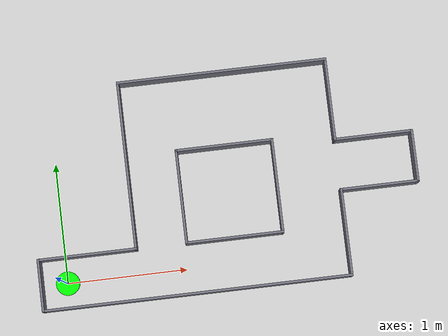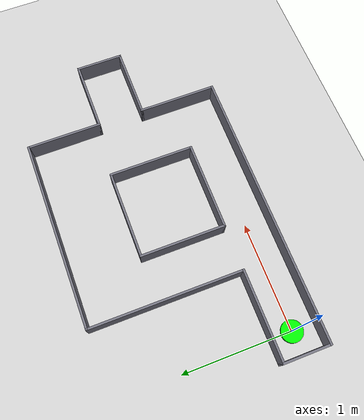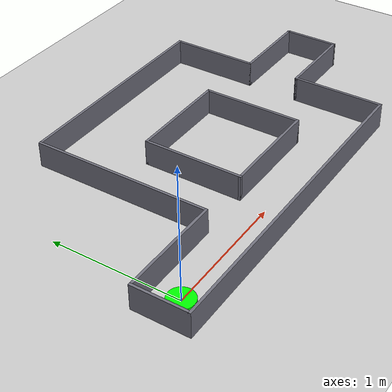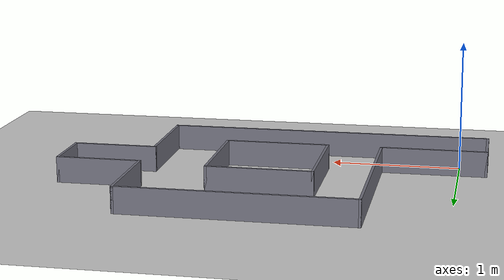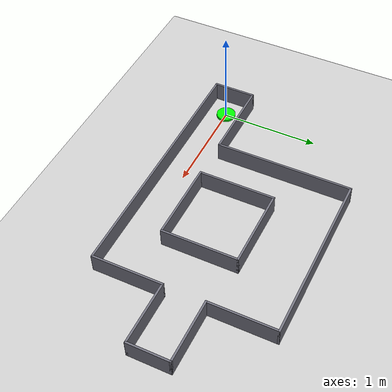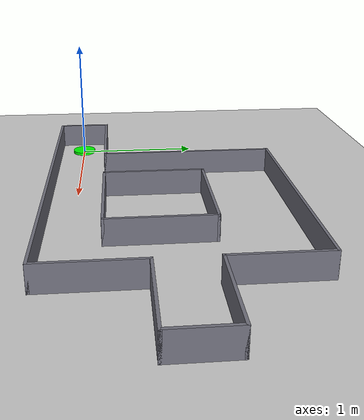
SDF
<?xml version="1.0" ?>
<!-- |    This document was autogenerated by xacro from laberinto.world.xacro          | -->
<!-- |    EDITING THIS FILE BY HAND IS NOT RECOMMENDED                                 | -->
<sdf version="1.9">
  <world name="laberinto">
    <!-- no figura en el reglamento -->
    <!-- ===== PLUGINS DEL SIMULADOR ===== -->
    <!-- La fisica: gravedad y choques -->
    <plugin filename="gz-sim-physics-system" name="gz::sim::systems::Physics"/>
    <!-- Permite agregar el robot al mundo mientras el simulador corre -->
    <plugin filename="gz-sim-user-commands-system" name="gz::sim::systems::UserCommands"/>
    <!-- Le pasa a la ventana de Gazebo lo que tiene que dibujar -->
    <plugin filename="gz-sim-scene-broadcaster-system" name="gz::sim::systems::SceneBroadcaster"/>
    <!-- Hace funcionar los sensores que miden mirando la escena, como los rayos de
         los ultrasonidos. ogre2 es el motor que dibuja esa escena. -->
    <plugin filename="gz-sim-sensors-system" name="gz::sim::systems::Sensors">
      <render_engine>ogre2</render_engine>
    </plugin>
    <light name="sol" type="directional">
      <pose>0 0 5 0 0 0</pose>
      <diffuse>0.8 0.8 0.8 1</diffuse>
      <specular>0.2 0.2 0.2 1</specular>
      <direction>-0.5 0.1 -0.9</direction>
    </light>
    <!-- ===== PUNTO DE PARTIDA ===== -->
    <!-- gz.launch.py de my_robot_bringup busca este modelo y pone ahi al robot (R en el dibujo) -->
    <model name="start_marker">
      <static>true</static>
      <pose>0 0 0.012 0 0 0</pose>
      <link name="link">
        <visual name="visual">
          <geometry>
            <cylinder>
              <radius>0.099</radius>
              <length>0.024</length>
            </cylinder>
          </geometry>
          <material>
            <ambient>0 1 0 1</ambient>
            <diffuse>0 1 0 1</diffuse>
          </material>
        </visual>
      </link>
    </model>
    <!-- ===== PISO ===== -->
    <model name="piso">
      <static>true</static>
      <link name="link">
        <collision name="collision">
          <geometry>
            <plane>
              <normal>0 0 1</normal>
              <size>10 10</size>
            </plane>
          </geometry>
        </collision>
        <visual name="visual">
          <geometry>
            <plane>
              <normal>0 0 1</normal>
              <size>10 10</size>
            </plane>
          </geometry>
          <material>
            <ambient>0.8 0.8 0.8 1</ambient>
            <diffuse>0.8 0.8 0.8 1</diffuse>
          </material>
        </visual>
      </link>
    </model>
    <model name="atras">
      <static>true</static>
      <pose>-0.21000000000000002 0.0 0.1 0 0 1.5707963267948966</pose>
      <link name="link">
        <collision name="collision">
          <geometry>
            <box>
              <size>0.44000000000000006 0.02 0.2</size>
            </box>
          </geometry>
        </collision>
        <visual name="visual">
          <geometry>
            <box>
              <size>0.44000000000000006 0.02 0.2</size>
            </box>
          </geometry>
          <material>
            <ambient>0.45 0.45 0.5 1</ambient>
            <diffuse>0.45 0.45 0.5 1</diffuse>
          </material>
        </visual>
      </link>
    </model>
    <model name="sur">
      <static>true</static>
      <pose>1.0650000000000002 -0.21000000000000002 0.1 0 0 0.0</pose>
      <link name="link">
        <collision name="collision">
          <geometry>
            <box>
              <size>2.5700000000000003 0.02 0.2</size>
            </box>
          </geometry>
        </collision>
        <visual name="visual">
          <geometry>
            <box>
              <size>2.5700000000000003 0.02 0.2</size>
            </box>
          </geometry>
          <material>
            <ambient>0.45 0.45 0.5 1</ambient>
            <diffuse>0.45 0.45 0.5 1</diffuse>
          </material>
        </visual>
      </link>
    </model>
    <model name="entrada">
      <static>true</static>
      <pose>0.19500000000000003 0.21000000000000002 0.1 0 0 0.0</pose>
      <link name="link">
        <collision name="collision">
          <geometry>
            <box>
              <size>0.8300000000000001 0.02 0.2</size>
            </box>
          </geometry>
        </collision>
        <visual name="visual">
          <geometry>
            <box>
              <size>0.8300000000000001 0.02 0.2</size>
            </box>
          </geometry>
          <material>
            <ambient>0.45 0.45 0.5 1</ambient>
            <diffuse>0.45 0.45 0.5 1</diffuse>
          </material>
        </visual>
      </link>
    </model>
    <model name="oeste">
      <static>true</static>
      <pose>0.6000000000000001 0.905 0.1 0 0 1.5707963267948966</pose>
      <link name="link">
        <collision name="collision">
          <geometry>
            <box>
              <size>1.4100000000000001 0.02 0.2</size>
            </box>
          </geometry>
        </collision>
        <visual name="visual">
          <geometry>
            <box>
              <size>1.4100000000000001 0.02 0.2</size>
            </box>
          </geometry>
          <material>
            <ambient>0.45 0.45 0.5 1</ambient>
            <diffuse>0.45 0.45 0.5 1</diffuse>
          </material>
        </visual>
      </link>
    </model>
    <model name="norte">
      <static>true</static>
      <pose>1.4700000000000002 1.6 0.1 0 0 0.0</pose>
      <link name="link">
        <collision name="collision">
          <geometry>
            <box>
              <size>1.7600000000000002 0.02 0.2</size>
            </box>
          </geometry>
        </collision>
        <visual name="visual">
          <geometry>
            <box>
              <size>1.7600000000000002 0.02 0.2</size>
            </box>
          </geometry>
          <material>
            <ambient>0.45 0.45 0.5 1</ambient>
            <diffuse>0.45 0.45 0.5 1</diffuse>
          </material>
        </visual>
      </link>
    </model>
    <model name="este_abajo">
      <static>true</static>
      <pose>2.3400000000000003 0.145 0.1 0 0 1.5707963267948966</pose>
      <link name="link">
        <collision name="collision">
          <geometry>
            <box>
              <size>0.73 0.02 0.2</size>
            </box>
          </geometry>
        </collision>
        <visual name="visual">
          <geometry>
            <box>
              <size>0.73 0.02 0.2</size>
            </box>
          </geometry>
          <material>
            <ambient>0.45 0.45 0.5 1</ambient>
            <diffuse>0.45 0.45 0.5 1</diffuse>
          </material>
        </visual>
      </link>
    </model>
    <model name="este_arriba">
      <static>true</static>
      <pose>2.3400000000000003 1.26 0.1 0 0 1.5707963267948966</pose>
      <link name="link">
        <collision name="collision">
          <geometry>
            <box>
              <size>0.7000000000000001 0.02 0.2</size>
            </box>
          </geometry>
        </collision>
        <visual name="visual">
          <geometry>
            <box>
              <size>0.7000000000000001 0.02 0.2</size>
            </box>
          </geometry>
          <material>
            <ambient>0.45 0.45 0.5 1</ambient>
            <diffuse>0.45 0.45 0.5 1</diffuse>
          </material>
        </visual>
      </link>
    </model>
    <model name="rama_sur">
      <static>true</static>
      <pose>2.66 0.5 0.1 0 0 0.0</pose>
      <link name="link">
        <collision name="collision">
          <geometry>
            <box>
              <size>0.6600000000000001 0.02 0.2</size>
            </box>
          </geometry>
        </collision>
        <visual name="visual">
          <geometry>
            <box>
              <size>0.6600000000000001 0.02 0.2</size>
            </box>
          </geometry>
          <material>
            <ambient>0.45 0.45 0.5 1</ambient>
            <diffuse>0.45 0.45 0.5 1</diffuse>
          </material>
        </visual>
      </link>
    </model>
    <model name="rama_norte">
      <static>true</static>
      <pose>2.66 0.92 0.1 0 0 0.0</pose>
      <link name="link">
        <collision name="collision">
          <geometry>
            <box>
              <size>0.6600000000000001 0.02 0.2</size>
            </box>
          </geometry>
        </collision>
        <visual name="visual">
          <geometry>
            <box>
              <size>0.6600000000000001 0.02 0.2</size>
            </box>
          </geometry>
          <material>
            <ambient>0.45 0.45 0.5 1</ambient>
            <diffuse>0.45 0.45 0.5 1</diffuse>
          </material>
        </visual>
      </link>
    </model>
    <model name="rama_fin">
      <static>true</static>
      <pose>2.9800000000000004 0.71 0.1 0 0 1.5707963267948966</pose>
      <link name="link">
        <collision name="collision">
          <geometry>
            <box>
              <size>0.44000000000000006 0.02 0.2</size>
            </box>
          </geometry>
        </collision>
        <visual name="visual">
          <geometry>
            <box>
              <size>0.44000000000000006 0.02 0.2</size>
            </box>
          </geometry>
          <material>
            <ambient>0.45 0.45 0.5 1</ambient>
            <diffuse>0.45 0.45 0.5 1</diffuse>
          </material>
        </visual>
      </link>
    </model>
    <model name="isla_sur">
      <static>true</static>
      <pose>1.42 0.21000000000000002 0.1 0 0 0.0</pose>
      <link name="link">
        <collision name="collision">
          <geometry>
            <box>
              <size>0.8200000000000001 0.02 0.2</size>
            </box>
          </geometry>
        </collision>
        <visual name="visual">
          <geometry>
            <box>
              <size>0.8200000000000001 0.02 0.2</size>
            </box>
          </geometry>
          <material>
            <ambient>0.45 0.45 0.5 1</ambient>
            <diffuse>0.45 0.45 0.5 1</diffuse>
          </material>
        </visual>
      </link>
    </model>
    <model name="isla_este">
      <static>true</static>
      <pose>1.82 0.595 0.1 0 0 1.5707963267948966</pose>
      <link name="link">
        <collision name="collision">
          <geometry>
            <box>
              <size>0.79 0.02 0.2</size>
            </box>
          </geometry>
        </collision>
        <visual name="visual">
          <geometry>
            <box>
              <size>0.79 0.02 0.2</size>
            </box>
          </geometry>
          <material>
            <ambient>0.45 0.45 0.5 1</ambient>
            <diffuse>0.45 0.45 0.5 1</diffuse>
          </material>
        </visual>
      </link>
    </model>
    <model name="isla_norte">
      <static>true</static>
      <pose>1.42 0.98 0.1 0 0 0.0</pose>
      <link name="link">
        <collision name="collision">
          <geometry>
            <box>
              <size>0.8200000000000001 0.02 0.2</size>
            </box>
          </geometry>
        </collision>
        <visual name="visual">
          <geometry>
            <box>
              <size>0.8200000000000001 0.02 0.2</size>
            </box>
          </geometry>
          <material>
            <ambient>0.45 0.45 0.5 1</ambient>
            <diffuse>0.45 0.45 0.5 1</diffuse>
          </material>
        </visual>
      </link>
    </model>
    <model name="isla_oeste">
      <static>true</static>
      <pose>1.02 0.595 0.1 0 0 1.5707963267948966</pose>
      <link name="link">
        <collision name="collision">
          <geometry>
            <box>
              <size>0.79 0.02 0.2</size>
            </box>
          </geometry>
        </collision>
        <visual name="visual">
          <geometry>
            <box>
              <size>0.79 0.02 0.2</size>
            </box>
          </geometry>
          <material>
            <ambient>0.45 0.45 0.5 1</ambient>
            <diffuse>0.45 0.45 0.5 1</diffuse>
          </material>
        </visual>
      </link>
    </model>
  </world>
</sdf>
